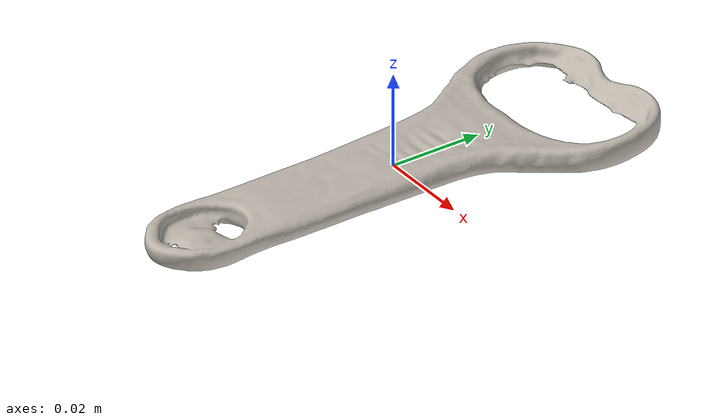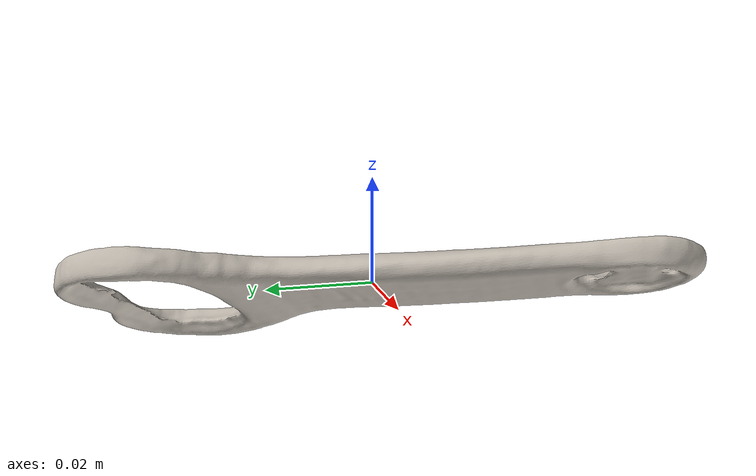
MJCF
<?xml version='1.0' encoding='utf-8'?>
<mujoco model="bottle_opener_3">
  <asset>
    <texture file="ceramic.png" name="tex-bottle_opener_3" type="2d" />
    <material name="bottle_opener_3" reflectance="0.5" texrepeat="1 1" texture="tex-bottle_opener_3" texuniform="false" />
    <mesh file="visual/model_normalized_0.obj" name="model_normalized_0_vis" scale="0.11 0.11 0.11" refquat="0.7071067811865475 0.0 0.0 -0.7071067811865475" />
    <mesh file="collision/model_normalized_collision_13.obj" name="model_normalized_collision_13._coll" scale="0.11 0.11 0.11" refquat="0.7071067811865475 0.0 0.0 -0.7071067811865475" />
    <mesh file="collision/model_normalized_collision_15.obj" name="model_normalized_collision_15._coll" scale="0.11 0.11 0.11" refquat="0.7071067811865475 0.0 0.0 -0.7071067811865475" />
    <mesh file="collision/model_normalized_collision_10.obj" name="model_normalized_collision_10._coll" scale="0.11 0.11 0.11" refquat="0.7071067811865475 0.0 0.0 -0.7071067811865475" />
    <mesh file="collision/model_normalized_collision_26.obj" name="model_normalized_collision_26._coll" scale="0.11 0.11 0.11" refquat="0.7071067811865475 0.0 0.0 -0.7071067811865475" />
    <mesh file="collision/model_normalized_collision_25.obj" name="model_normalized_collision_25._coll" scale="0.11 0.11 0.11" refquat="0.7071067811865475 0.0 0.0 -0.7071067811865475" />
    <mesh file="collision/model_normalized_collision_5.obj" name="model_normalized_collision_5._coll" scale="0.11 0.11 0.11" refquat="0.7071067811865475 0.0 0.0 -0.7071067811865475" />
    <mesh file="collision/model_normalized_collision_31.obj" name="model_normalized_collision_31._coll" scale="0.11 0.11 0.11" refquat="0.7071067811865475 0.0 0.0 -0.7071067811865475" />
    <mesh file="collision/model_normalized_collision_3.obj" name="model_normalized_collision_3._coll" scale="0.11 0.11 0.11" refquat="0.7071067811865475 0.0 0.0 -0.7071067811865475" />
    <mesh file="collision/model_normalized_collision_14.obj" name="model_normalized_collision_14._coll" scale="0.11 0.11 0.11" refquat="0.7071067811865475 0.0 0.0 -0.7071067811865475" />
    <mesh file="collision/model_normalized_collision_28.obj" name="model_normalized_collision_28._coll" scale="0.11 0.11 0.11" refquat="0.7071067811865475 0.0 0.0 -0.7071067811865475" />
    <mesh file="collision/model_normalized_collision_11.obj" name="model_normalized_collision_11._coll" scale="0.11 0.11 0.11" refquat="0.7071067811865475 0.0 0.0 -0.7071067811865475" />
    <mesh file="collision/model_normalized_collision_29.obj" name="model_normalized_collision_29._coll" scale="0.11 0.11 0.11" refquat="0.7071067811865475 0.0 0.0 -0.7071067811865475" />
    <mesh file="collision/model_normalized_collision_24.obj" name="model_normalized_collision_24._coll" scale="0.11 0.11 0.11" refquat="0.7071067811865475 0.0 0.0 -0.7071067811865475" />
    <mesh file="collision/model_normalized_collision_1.obj" name="model_normalized_collision_1._coll" scale="0.11 0.11 0.11" refquat="0.7071067811865475 0.0 0.0 -0.7071067811865475" />
    <mesh file="collision/model_normalized_collision_0.obj" name="model_normalized_collision_0._coll" scale="0.11 0.11 0.11" refquat="0.7071067811865475 0.0 0.0 -0.7071067811865475" />
    <mesh file="collision/model_normalized_collision_27.obj" name="model_normalized_collision_27._coll" scale="0.11 0.11 0.11" refquat="0.7071067811865475 0.0 0.0 -0.7071067811865475" />
    <mesh file="collision/model_normalized_collision_9.obj" name="model_normalized_collision_9._coll" scale="0.11 0.11 0.11" refquat="0.7071067811865475 0.0 0.0 -0.7071067811865475" />
    <mesh file="collision/model_normalized_collision_19.obj" name="model_normalized_collision_19._coll" scale="0.11 0.11 0.11" refquat="0.7071067811865475 0.0 0.0 -0.7071067811865475" />
    <mesh file="collision/model_normalized_collision_21.obj" name="model_normalized_collision_21._coll" scale="0.11 0.11 0.11" refquat="0.7071067811865475 0.0 0.0 -0.7071067811865475" />
    <mesh file="collision/model_normalized_collision_30.obj" name="model_normalized_collision_30._coll" scale="0.11 0.11 0.11" refquat="0.7071067811865475 0.0 0.0 -0.7071067811865475" />
    <mesh file="collision/model_normalized_collision_20.obj" name="model_normalized_collision_20._coll" scale="0.11 0.11 0.11" refquat="0.7071067811865475 0.0 0.0 -0.7071067811865475" />
    <mesh file="collision/model_normalized_collision_2.obj" name="model_normalized_collision_2._coll" scale="0.11 0.11 0.11" refquat="0.7071067811865475 0.0 0.0 -0.7071067811865475" />
    <mesh file="collision/model_normalized_collision_7.obj" name="model_normalized_collision_7._coll" scale="0.11 0.11 0.11" refquat="0.7071067811865475 0.0 0.0 -0.7071067811865475" />
    <mesh file="collision/model_normalized_collision_22.obj" name="model_normalized_collision_22._coll" scale="0.11 0.11 0.11" refquat="0.7071067811865475 0.0 0.0 -0.7071067811865475" />
    <mesh file="collision/model_normalized_collision_16.obj" name="model_normalized_collision_16._coll" scale="0.11 0.11 0.11" refquat="0.7071067811865475 0.0 0.0 -0.7071067811865475" />
    <mesh file="collision/model_normalized_collision_8.obj" name="model_normalized_collision_8._coll" scale="0.11 0.11 0.11" refquat="0.7071067811865475 0.0 0.0 -0.7071067811865475" />
    <mesh file="collision/model_normalized_collision_6.obj" name="model_normalized_collision_6._coll" scale="0.11 0.11 0.11" refquat="0.7071067811865475 0.0 0.0 -0.7071067811865475" />
    <mesh file="collision/model_normalized_collision_18.obj" name="model_normalized_collision_18._coll" scale="0.11 0.11 0.11" refquat="0.7071067811865475 0.0 0.0 -0.7071067811865475" />
    <mesh file="collision/model_normalized_collision_17.obj" name="model_normalized_collision_17._coll" scale="0.11 0.11 0.11" refquat="0.7071067811865475 0.0 0.0 -0.7071067811865475" />
    <mesh file="collision/model_normalized_collision_12.obj" name="model_normalized_collision_12._coll" scale="0.11 0.11 0.11" refquat="0.7071067811865475 0.0 0.0 -0.7071067811865475" />
    <mesh file="collision/model_normalized_collision_4.obj" name="model_normalized_collision_4._coll" scale="0.11 0.11 0.11" refquat="0.7071067811865475 0.0 0.0 -0.7071067811865475" />
    <mesh file="collision/model_normalized_collision_23.obj" name="model_normalized_collision_23._coll" scale="0.11 0.11 0.11" refquat="0.7071067811865475 0.0 0.0 -0.7071067811865475" />
    <texture type="2d" name="09b5bb6e26e9_Bottle_opener__3d_a_texture_kd" file="visual/09b5bb6e26e9_Bottle_opener__3d_a_texture_kd.png" />
    <material name="Material_0" texture="09b5bb6e26e9_Bottle_opener__3d_a_texture_kd" specular="0.5" shininess="0.5" />
  </asset>
  <default>
    <default class="region">
      <geom group="1" conaffinity="0" contype="0" rgba="0 1 0 0" />
    </default>
  </default>
  <worldbody>
    <body>
      <body name="object">
        <geom solimp="0.998 0.998 0.001" solref="0.001 1" density="100" friction="0.95 0.3 0.1" type="mesh" mesh="model_normalized_0_vis" conaffinity="0" contype="0" group="1" material="Material_0" />
        <geom solimp="0.998 0.998 0.001" solref="0.001 1" density="100" friction="0.95 0.3 0.1" type="mesh" mesh="model_normalized_collision_13._coll" group="0" rgba="0.8 0.8 0.8 0.0" />
        <geom solimp="0.998 0.998 0.001" solref="0.001 1" density="100" friction="0.95 0.3 0.1" type="mesh" mesh="model_normalized_collision_15._coll" group="0" rgba="0.8 0.8 0.8 0.0" />
        <geom solimp="0.998 0.998 0.001" solref="0.001 1" density="100" friction="0.95 0.3 0.1" type="mesh" mesh="model_normalized_collision_10._coll" group="0" rgba="0.8 0.8 0.8 0.0" />
        <geom solimp="0.998 0.998 0.001" solref="0.001 1" density="100" friction="0.95 0.3 0.1" type="mesh" mesh="model_normalized_collision_26._coll" group="0" rgba="0.8 0.8 0.8 0.0" />
        <geom solimp="0.998 0.998 0.001" solref="0.001 1" density="100" friction="0.95 0.3 0.1" type="mesh" mesh="model_normalized_collision_25._coll" group="0" rgba="0.8 0.8 0.8 0.0" />
        <geom solimp="0.998 0.998 0.001" solref="0.001 1" density="100" friction="0.95 0.3 0.1" type="mesh" mesh="model_normalized_collision_5._coll" group="0" rgba="0.8 0.8 0.8 0.0" />
        <geom solimp="0.998 0.998 0.001" solref="0.001 1" density="100" friction="0.95 0.3 0.1" type="mesh" mesh="model_normalized_collision_31._coll" group="0" rgba="0.8 0.8 0.8 0.0" />
        <geom solimp="0.998 0.998 0.001" solref="0.001 1" density="100" friction="0.95 0.3 0.1" type="mesh" mesh="model_normalized_collision_3._coll" group="0" rgba="0.8 0.8 0.8 0.0" />
        <geom solimp="0.998 0.998 0.001" solref="0.001 1" density="100" friction="0.95 0.3 0.1" type="mesh" mesh="model_normalized_collision_14._coll" group="0" rgba="0.8 0.8 0.8 0.0" />
        <geom solimp="0.998 0.998 0.001" solref="0.001 1" density="100" friction="0.95 0.3 0.1" type="mesh" mesh="model_normalized_collision_28._coll" group="0" rgba="0.8 0.8 0.8 0.0" />
        <geom solimp="0.998 0.998 0.001" solref="0.001 1" density="100" friction="0.95 0.3 0.1" type="mesh" mesh="model_normalized_collision_11._coll" group="0" rgba="0.8 0.8 0.8 0.0" />
        <geom solimp="0.998 0.998 0.001" solref="0.001 1" density="100" friction="0.95 0.3 0.1" type="mesh" mesh="model_normalized_collision_29._coll" group="0" rgba="0.8 0.8 0.8 0.0" />
        <geom solimp="0.998 0.998 0.001" solref="0.001 1" density="100" friction="0.95 0.3 0.1" type="mesh" mesh="model_normalized_collision_24._coll" group="0" rgba="0.8 0.8 0.8 0.0" />
        <geom solimp="0.998 0.998 0.001" solref="0.001 1" density="100" friction="0.95 0.3 0.1" type="mesh" mesh="model_normalized_collision_1._coll" group="0" rgba="0.8 0.8 0.8 0.0" />
        <geom solimp="0.998 0.998 0.001" solref="0.001 1" density="100" friction="0.95 0.3 0.1" type="mesh" mesh="model_normalized_collision_0._coll" group="0" rgba="0.8 0.8 0.8 0.0" />
        <geom solimp="0.998 0.998 0.001" solref="0.001 1" density="100" friction="0.95 0.3 0.1" type="mesh" mesh="model_normalized_collision_27._coll" group="0" rgba="0.8 0.8 0.8 0.0" />
        <geom solimp="0.998 0.998 0.001" solref="0.001 1" density="100" friction="0.95 0.3 0.1" type="mesh" mesh="model_normalized_collision_9._coll" group="0" rgba="0.8 0.8 0.8 0.0" />
        <geom solimp="0.998 0.998 0.001" solref="0.001 1" density="100" friction="0.95 0.3 0.1" type="mesh" mesh="model_normalized_collision_19._coll" group="0" rgba="0.8 0.8 0.8 0.0" />
        <geom solimp="0.998 0.998 0.001" solref="0.001 1" density="100" friction="0.95 0.3 0.1" type="mesh" mesh="model_normalized_collision_21._coll" group="0" rgba="0.8 0.8 0.8 0.0" />
        <geom solimp="0.998 0.998 0.001" solref="0.001 1" density="100" friction="0.95 0.3 0.1" type="mesh" mesh="model_normalized_collision_30._coll" group="0" rgba="0.8 0.8 0.8 0.0" />
        <geom solimp="0.998 0.998 0.001" solref="0.001 1" density="100" friction="0.95 0.3 0.1" type="mesh" mesh="model_normalized_collision_20._coll" group="0" rgba="0.8 0.8 0.8 0.0" />
        <geom solimp="0.998 0.998 0.001" solref="0.001 1" density="100" friction="0.95 0.3 0.1" type="mesh" mesh="model_normalized_collision_2._coll" group="0" rgba="0.8 0.8 0.8 0.0" />
        <geom solimp="0.998 0.998 0.001" solref="0.001 1" density="100" friction="0.95 0.3 0.1" type="mesh" mesh="model_normalized_collision_7._coll" group="0" rgba="0.8 0.8 0.8 0.0" />
        <geom solimp="0.998 0.998 0.001" solref="0.001 1" density="100" friction="0.95 0.3 0.1" type="mesh" mesh="model_normalized_collision_22._coll" group="0" rgba="0.8 0.8 0.8 0.0" />
        <geom solimp="0.998 0.998 0.001" solref="0.001 1" density="100" friction="0.95 0.3 0.1" type="mesh" mesh="model_normalized_collision_16._coll" group="0" rgba="0.8 0.8 0.8 0.0" />
        <geom solimp="0.998 0.998 0.001" solref="0.001 1" density="100" friction="0.95 0.3 0.1" type="mesh" mesh="model_normalized_collision_8._coll" group="0" rgba="0.8 0.8 0.8 0.0" />
        <geom solimp="0.998 0.998 0.001" solref="0.001 1" density="100" friction="0.95 0.3 0.1" type="mesh" mesh="model_normalized_collision_6._coll" group="0" rgba="0.8 0.8 0.8 0.0" />
        <geom solimp="0.998 0.998 0.001" solref="0.001 1" density="100" friction="0.95 0.3 0.1" type="mesh" mesh="model_normalized_collision_18._coll" group="0" rgba="0.8 0.8 0.8 0.0" />
        <geom solimp="0.998 0.998 0.001" solref="0.001 1" density="100" friction="0.95 0.3 0.1" type="mesh" mesh="model_normalized_collision_17._coll" group="0" rgba="0.8 0.8 0.8 0.0" />
        <geom solimp="0.998 0.998 0.001" solref="0.001 1" density="100" friction="0.95 0.3 0.1" type="mesh" mesh="model_normalized_collision_12._coll" group="0" rgba="0.8 0.8 0.8 0.0" />
        <geom solimp="0.998 0.998 0.001" solref="0.001 1" density="100" friction="0.95 0.3 0.1" type="mesh" mesh="model_normalized_collision_4._coll" group="0" rgba="0.8 0.8 0.8 0.0" />
        <geom solimp="0.998 0.998 0.001" solref="0.001 1" density="100" friction="0.95 0.3 0.1" type="mesh" mesh="model_normalized_collision_23._coll" group="0" rgba="0.8 0.8 0.8 0.0" />
        <geom class="region" name="reg_bbox" type="box" pos="0.00022873949999999962 1.6499999960783995e-09 0.00020113829999999925" size="0.023562072599999997 0.05583333469999999 0.004166666899999999" />
      </body>
    <site rgba="0 0 0 0" size="0.005" pos="0 0 -0.0039655286" name="bottom_site" /><site rgba="0 0 0 0" size="0.005" pos="0 0 0.0043678052" name="top_site" /><site rgba="0 0 0 0" size="0.005" pos="0.055833336 0.055833336 0" name="horizontal_radius_site" /></body>
  </worldbody>
</mujoco>
